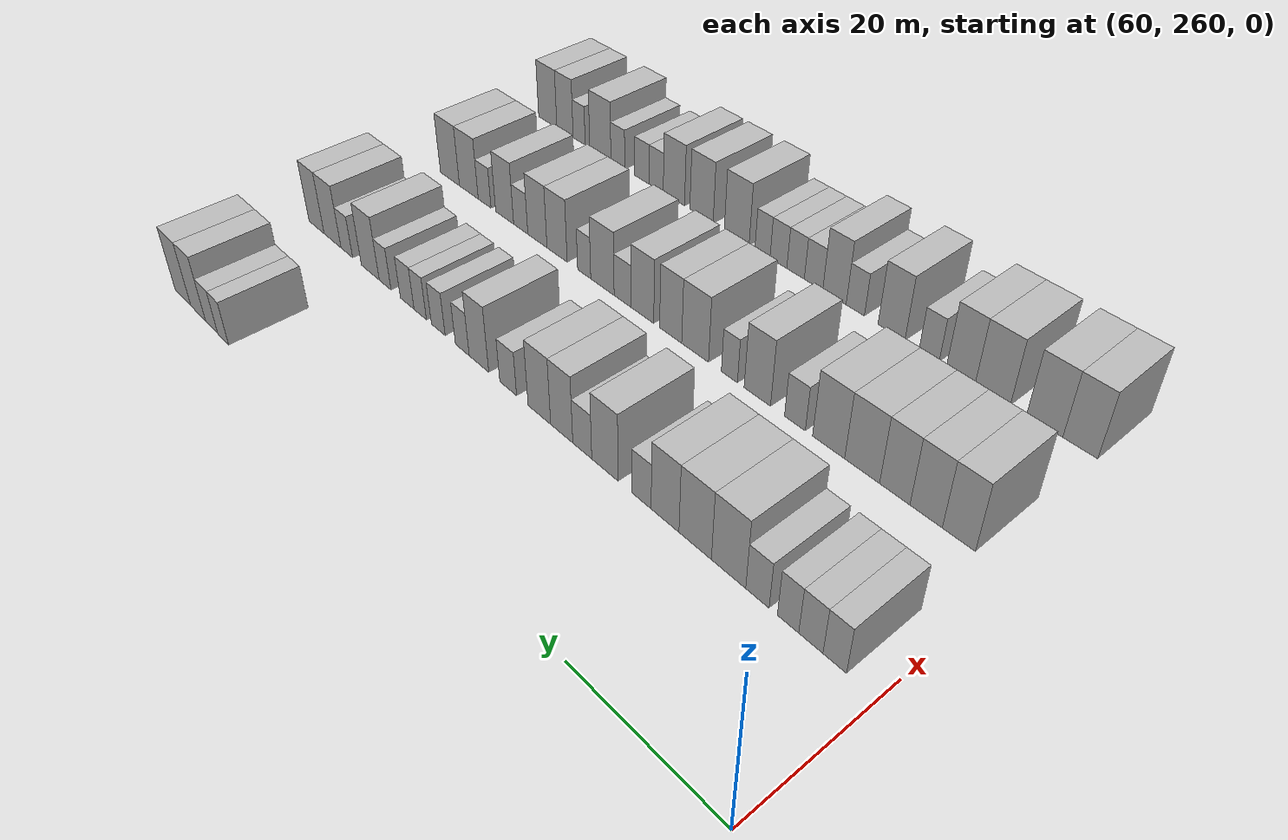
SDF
<sdf version="1.6">
 <world name="default">
  <model name="building_514">
   <static>1</static>
   <pose>63.0000 338.3845 0 0.000000 0.000000 0.000000</pose>
   <link name="link">
    <pose>0 0 3.00 0 0 0</pose>
    <collision name="collision"><geometry><box><size>10.0000 2.5988 6.0000</size></box></geometry></collision>
    <visual name="visual">
     <cast_shadows>0</cast_shadows>
     <geometry><box><size>10.0000 2.5988 6.0000</size></box></geometry>
     <material>
      <script>
       <uri>model://HANNAS_wall/materials/scripts</uri>
       <uri>model://HANNAS_wall/materials/textures</uri>
       <name>vrc/HANNAS_wall</name>
      </script>
     </material>
    </visual>
   </link>
  </model>
  <model name="building_515">
   <static>1</static>
   <pose>63.0000 341.1776 0 0.000000 0.000000 0.000000</pose>
   <link name="link">
    <pose>0 0 3.00 0 0 0</pose>
    <collision name="collision"><geometry><box><size>10.0000 2.9874 6.0000</size></box></geometry></collision>
    <visual name="visual">
     <cast_shadows>0</cast_shadows>
     <geometry><box><size>10.0000 2.9874 6.0000</size></box></geometry>
     <material>
      <script>
       <uri>model://HANNAS_wall/materials/scripts</uri>
       <uri>model://HANNAS_wall/materials/textures</uri>
       <name>vrc/HANNAS_wall</name>
      </script>
     </material>
    </visual>
   </link>
  </model>
  <model name="building_516">
   <static>1</static>
   <pose>63.0000 344.5275 0 0.000000 0.000000 0.000000</pose>
   <link name="link">
    <pose>0 0 4.50 0 0 0</pose>
    <collision name="collision"><geometry><box><size>10.0000 3.7124 9.0000</size></box></geometry></collision>
    <visual name="visual">
     <cast_shadows>0</cast_shadows>
     <geometry><box><size>10.0000 3.7124 9.0000</size></box></geometry>
     <material>
      <script>
       <uri>model://HANNAS_wall/materials/scripts</uri>
       <uri>model://HANNAS_wall/materials/textures</uri>
       <name>vrc/HANNAS_wall</name>
      </script>
     </material>
    </visual>
   </link>
  </model>
  <model name="building_517">
   <static>1</static>
   <pose>63.0000 348.4287 0 0.000000 0.000000 0.000000</pose>
   <link name="link">
    <pose>0 0 4.50 0 0 0</pose>
    <collision name="collision"><geometry><box><size>10.0000 4.0901 9.0000</size></box></geometry></collision>
    <visual name="visual">
     <cast_shadows>0</cast_shadows>
     <geometry><box><size>10.0000 4.0901 9.0000</size></box></geometry>
     <material>
      <script>
       <uri>model://HANNAS_wall/materials/scripts</uri>
       <uri>model://HANNAS_wall/materials/textures</uri>
       <name>vrc/HANNAS_wall</name>
      </script>
     </material>
    </visual>
   </link>
  </model>
  <model name="building_682">
   <static>1</static>
   <pose>82.0000 264.7174 0 0.000000 0.000000 0.000000</pose>
   <link name="link">
    <pose>0 0 3.00 0 0 0</pose>
    <collision name="collision"><geometry><box><size>10.0000 2.6478 6.0000</size></box></geometry></collision>
    <visual name="visual">
     <cast_shadows>0</cast_shadows>
     <geometry><box><size>10.0000 2.6478 6.0000</size></box></geometry>
     <material>
      <script>
       <uri>model://HANNAS_wall/materials/scripts</uri>
       <uri>model://HANNAS_wall/materials/textures</uri>
       <name>vrc/HANNAS_wall</name>
      </script>
     </material>
    </visual>
   </link>
  </model>
  <model name="building_683">
   <static>1</static>
   <pose>82.0000 267.4452 0 0.000000 0.000000 0.000000</pose>
   <link name="link">
    <pose>0 0 3.00 0 0 0</pose>
    <collision name="collision"><geometry><box><size>10.0000 2.8079 6.0000</size></box></geometry></collision>
    <visual name="visual">
     <cast_shadows>0</cast_shadows>
     <geometry><box><size>10.0000 2.8079 6.0000</size></box></geometry>
     <material>
      <script>
       <uri>model://HANNAS_wall/materials/scripts</uri>
       <uri>model://HANNAS_wall/materials/textures</uri>
       <name>vrc/HANNAS_wall</name>
      </script>
     </material>
    </visual>
   </link>
  </model>
  <model name="building_684">
   <static>1</static>
   <pose>82.0000 270.1180 0 0.000000 0.000000 0.000000</pose>
   <link name="link">
    <pose>0 0 3.00 0 0 0</pose>
    <collision name="collision"><geometry><box><size>10.0000 2.5377 6.0000</size></box></geometry></collision>
    <visual name="visual">
     <cast_shadows>0</cast_shadows>
     <geometry><box><size>10.0000 2.5377 6.0000</size></box></geometry>
     <material>
      <script>
       <uri>model://HANNAS_wall/materials/scripts</uri>
       <uri>model://HANNAS_wall/materials/textures</uri>
       <name>vrc/HANNAS_wall</name>
      </script>
     </material>
    </visual>
   </link>
  </model>
  <model name="building_685">
   <static>1</static>
   <pose>82.0000 273.8341 0 0.000000 0.000000 0.000000</pose>
   <link name="link">
    <pose>0 0 3.00 0 0 0</pose>
    <collision name="collision"><geometry><box><size>10.0000 2.8944 6.0000</size></box></geometry></collision>
    <visual name="visual">
     <cast_shadows>0</cast_shadows>
     <geometry><box><size>10.0000 2.8944 6.0000</size></box></geometry>
     <material>
      <script>
       <uri>model://HANNAS_wall/materials/scripts</uri>
       <uri>model://HANNAS_wall/materials/textures</uri>
       <name>vrc/HANNAS_wall</name>
      </script>
     </material>
    </visual>
   </link>
  </model>
  <model name="building_686">
   <static>1</static>
   <pose>82.0000 277.4903 0 0.000000 0.000000 0.000000</pose>
   <link name="link">
    <pose>0 0 4.50 0 0 0</pose>
    <collision name="collision"><geometry><box><size>10.0000 4.4180 9.0000</size></box></geometry></collision>
    <visual name="visual">
     <cast_shadows>0</cast_shadows>
     <geometry><box><size>10.0000 4.4180 9.0000</size></box></geometry>
     <material>
      <script>
       <uri>model://HANNAS_wall/materials/scripts</uri>
       <uri>model://HANNAS_wall/materials/textures</uri>
       <name>vrc/HANNAS_wall</name>
      </script>
     </material>
    </visual>
   </link>
  </model>
  <model name="building_687">
   <static>1</static>
   <pose>82.0000 281.8822 0 0.000000 0.000000 0.000000</pose>
   <link name="link">
    <pose>0 0 4.50 0 0 0</pose>
    <collision name="collision"><geometry><box><size>10.0000 4.3656 9.0000</size></box></geometry></collision>
    <visual name="visual">
     <cast_shadows>0</cast_shadows>
     <geometry><box><size>10.0000 4.3656 9.0000</size></box></geometry>
     <material>
      <script>
       <uri>model://HANNAS_wall/materials/scripts</uri>
       <uri>model://HANNAS_wall/materials/textures</uri>
       <name>vrc/HANNAS_wall</name>
      </script>
     </material>
    </visual>
   </link>
  </model>
  <model name="building_688">
   <static>1</static>
   <pose>82.0000 286.0206 0 0.000000 0.000000 0.000000</pose>
   <link name="link">
    <pose>0 0 4.50 0 0 0</pose>
    <collision name="collision"><geometry><box><size>10.0000 3.9113 9.0000</size></box></geometry></collision>
    <visual name="visual">
     <cast_shadows>0</cast_shadows>
     <geometry><box><size>10.0000 3.9113 9.0000</size></box></geometry>
     <material>
      <script>
       <uri>model://HANNAS_wall/materials/scripts</uri>
       <uri>model://HANNAS_wall/materials/textures</uri>
       <name>vrc/HANNAS_wall</name>
      </script>
     </material>
    </visual>
   </link>
  </model>
  <model name="building_689">
   <static>1</static>
   <pose>82.0000 289.3879 0 0.000000 0.000000 0.000000</pose>
   <link name="link">
    <pose>0 0 3.00 0 0 0</pose>
    <collision name="collision"><geometry><box><size>10.0000 2.8234 6.0000</size></box></geometry></collision>
    <visual name="visual">
     <cast_shadows>0</cast_shadows>
     <geometry><box><size>10.0000 2.8234 6.0000</size></box></geometry>
     <material>
      <script>
       <uri>model://HANNAS_wall/materials/scripts</uri>
       <uri>model://HANNAS_wall/materials/textures</uri>
       <name>vrc/HANNAS_wall</name>
      </script>
     </material>
    </visual>
   </link>
  </model>
  <model name="building_690">
   <static>1</static>
   <pose>82.0000 294.8202 0 0.000000 0.000000 0.000000</pose>
   <link name="link">
    <pose>0 0 4.50 0 0 0</pose>
    <collision name="collision"><geometry><box><size>10.0000 4.0410 9.0000</size></box></geometry></collision>
    <visual name="visual">
     <cast_shadows>0</cast_shadows>
     <geometry><box><size>10.0000 4.0410 9.0000</size></box></geometry>
     <material>
      <script>
       <uri>model://HANNAS_wall/materials/scripts</uri>
       <uri>model://HANNAS_wall/materials/textures</uri>
       <name>vrc/HANNAS_wall</name>
      </script>
     </material>
    </visual>
   </link>
  </model>
  <model name="building_691">
   <static>1</static>
   <pose>82.0000 298.3397 0 0.000000 0.000000 0.000000</pose>
   <link name="link">
    <pose>0 0 3.00 0 0 0</pose>
    <collision name="collision"><geometry><box><size>10.0000 2.9981 6.0000</size></box></geometry></collision>
    <visual name="visual">
     <cast_shadows>0</cast_shadows>
     <geometry><box><size>10.0000 2.9981 6.0000</size></box></geometry>
     <material>
      <script>
       <uri>model://HANNAS_wall/materials/scripts</uri>
       <uri>model://HANNAS_wall/materials/textures</uri>
       <name>vrc/HANNAS_wall</name>
      </script>
     </material>
    </visual>
   </link>
  </model>
  <model name="building_692">
   <static>1</static>
   <pose>82.0000 301.6391 0 0.000000 0.000000 0.000000</pose>
   <link name="link">
    <pose>0 0 4.50 0 0 0</pose>
    <collision name="collision"><geometry><box><size>10.0000 3.6008 9.0000</size></box></geometry></collision>
    <visual name="visual">
     <cast_shadows>0</cast_shadows>
     <geometry><box><size>10.0000 3.6008 9.0000</size></box></geometry>
     <material>
      <script>
       <uri>model://HANNAS_wall/materials/scripts</uri>
       <uri>model://HANNAS_wall/materials/textures</uri>
       <name>vrc/HANNAS_wall</name>
      </script>
     </material>
    </visual>
   </link>
  </model>
  <model name="building_693">
   <static>1</static>
   <pose>82.0000 305.3458 0 0.000000 0.000000 0.000000</pose>
   <link name="link">
    <pose>0 0 4.50 0 0 0</pose>
    <collision name="collision"><geometry><box><size>10.0000 3.8126 9.0000</size></box></geometry></collision>
    <visual name="visual">
     <cast_shadows>0</cast_shadows>
     <geometry><box><size>10.0000 3.8126 9.0000</size></box></geometry>
     <material>
      <script>
       <uri>model://HANNAS_wall/materials/scripts</uri>
       <uri>model://HANNAS_wall/materials/textures</uri>
       <name>vrc/HANNAS_wall</name>
      </script>
     </material>
    </visual>
   </link>
  </model>
  <model name="building_694">
   <static>1</static>
   <pose>82.0000 310.7434 0 0.000000 0.000000 0.000000</pose>
   <link name="link">
    <pose>0 0 3.00 0 0 0</pose>
    <collision name="collision"><geometry><box><size>10.0000 2.9826 6.0000</size></box></geometry></collision>
    <visual name="visual">
     <cast_shadows>0</cast_shadows>
     <geometry><box><size>10.0000 2.9826 6.0000</size></box></geometry>
     <material>
      <script>
       <uri>model://HANNAS_wall/materials/scripts</uri>
       <uri>model://HANNAS_wall/materials/textures</uri>
       <name>vrc/HANNAS_wall</name>
      </script>
     </material>
    </visual>
   </link>
  </model>
  <model name="building_695">
   <static>1</static>
   <pose>82.0000 316.0466 0 0.000000 0.000000 0.000000</pose>
   <link name="link">
    <pose>0 0 4.50 0 0 0</pose>
    <collision name="collision"><geometry><box><size>10.0000 3.6238 9.0000</size></box></geometry></collision>
    <visual name="visual">
     <cast_shadows>0</cast_shadows>
     <geometry><box><size>10.0000 3.6238 9.0000</size></box></geometry>
     <material>
      <script>
       <uri>model://HANNAS_wall/materials/scripts</uri>
       <uri>model://HANNAS_wall/materials/textures</uri>
       <name>vrc/HANNAS_wall</name>
      </script>
     </material>
    </visual>
   </link>
  </model>
  <model name="building_696">
   <static>1</static>
   <pose>82.0000 319.1694 0 0.000000 0.000000 0.000000</pose>
   <link name="link">
    <pose>0 0 3.00 0 0 0</pose>
    <collision name="collision"><geometry><box><size>10.0000 2.6218 6.0000</size></box></geometry></collision>
    <visual name="visual">
     <cast_shadows>0</cast_shadows>
     <geometry><box><size>10.0000 2.6218 6.0000</size></box></geometry>
     <material>
      <script>
       <uri>model://HANNAS_wall/materials/scripts</uri>
       <uri>model://HANNAS_wall/materials/textures</uri>
       <name>vrc/HANNAS_wall</name>
      </script>
     </material>
    </visual>
   </link>
  </model>
  <model name="building_697">
   <static>1</static>
   <pose>82.0000 323.8464 0 0.000000 0.000000 0.000000</pose>
   <link name="link">
    <pose>0 0 3.00 0 0 0</pose>
    <collision name="collision"><geometry><box><size>10.0000 2.7321 6.0000</size></box></geometry></collision>
    <visual name="visual">
     <cast_shadows>0</cast_shadows>
     <geometry><box><size>10.0000 2.7321 6.0000</size></box></geometry>
     <material>
      <script>
       <uri>model://HANNAS_wall/materials/scripts</uri>
       <uri>model://HANNAS_wall/materials/textures</uri>
       <name>vrc/HANNAS_wall</name>
      </script>
     </material>
    </visual>
   </link>
  </model>
  <model name="building_698">
   <static>1</static>
   <pose>82.0000 327.4817 0 0.000000 0.000000 0.000000</pose>
   <link name="link">
    <pose>0 0 3.00 0 0 0</pose>
    <collision name="collision"><geometry><box><size>10.0000 2.5385 6.0000</size></box></geometry></collision>
    <visual name="visual">
     <cast_shadows>0</cast_shadows>
     <geometry><box><size>10.0000 2.5385 6.0000</size></box></geometry>
     <material>
      <script>
       <uri>model://HANNAS_wall/materials/scripts</uri>
       <uri>model://HANNAS_wall/materials/textures</uri>
       <name>vrc/HANNAS_wall</name>
      </script>
     </material>
    </visual>
   </link>
  </model>
  <model name="building_699">
   <static>1</static>
   <pose>82.0000 330.1828 0 0.000000 0.000000 0.000000</pose>
   <link name="link">
    <pose>0 0 3.00 0 0 0</pose>
    <collision name="collision"><geometry><box><size>10.0000 2.8638 6.0000</size></box></geometry></collision>
    <visual name="visual">
     <cast_shadows>0</cast_shadows>
     <geometry><box><size>10.0000 2.8638 6.0000</size></box></geometry>
     <material>
      <script>
       <uri>model://HANNAS_wall/materials/scripts</uri>
       <uri>model://HANNAS_wall/materials/textures</uri>
       <name>vrc/HANNAS_wall</name>
      </script>
     </material>
    </visual>
   </link>
  </model>
  <model name="building_700">
   <static>1</static>
   <pose>82.0000 334.8943 0 0.000000 0.000000 0.000000</pose>
   <link name="link">
    <pose>0 0 3.00 0 0 0</pose>
    <collision name="collision"><geometry><box><size>10.0000 2.5591 6.0000</size></box></geometry></collision>
    <visual name="visual">
     <cast_shadows>0</cast_shadows>
     <geometry><box><size>10.0000 2.5591 6.0000</size></box></geometry>
     <material>
      <script>
       <uri>model://HANNAS_wall/materials/scripts</uri>
       <uri>model://HANNAS_wall/materials/textures</uri>
       <name>vrc/HANNAS_wall</name>
      </script>
     </material>
    </visual>
   </link>
  </model>
  <model name="building_701">
   <static>1</static>
   <pose>82.0000 338.1633 0 0.000000 0.000000 0.000000</pose>
   <link name="link">
    <pose>0 0 4.50 0 0 0</pose>
    <collision name="collision"><geometry><box><size>10.0000 3.9789 9.0000</size></box></geometry></collision>
    <visual name="visual">
     <cast_shadows>0</cast_shadows>
     <geometry><box><size>10.0000 3.9789 9.0000</size></box></geometry>
     <material>
      <script>
       <uri>model://HANNAS_wall/materials/scripts</uri>
       <uri>model://HANNAS_wall/materials/textures</uri>
       <name>vrc/HANNAS_wall</name>
      </script>
     </material>
    </visual>
   </link>
  </model>
  <model name="building_702">
   <static>1</static>
   <pose>82.0000 343.5040 0 0.000000 0.000000 0.000000</pose>
   <link name="link">
    <pose>0 0 3.00 0 0 0</pose>
    <collision name="collision"><geometry><box><size>10.0000 2.7025 6.0000</size></box></geometry></collision>
    <visual name="visual">
     <cast_shadows>0</cast_shadows>
     <geometry><box><size>10.0000 2.7025 6.0000</size></box></geometry>
     <material>
      <script>
       <uri>model://HANNAS_wall/materials/scripts</uri>
       <uri>model://HANNAS_wall/materials/textures</uri>
       <name>vrc/HANNAS_wall</name>
      </script>
     </material>
    </visual>
   </link>
  </model>
  <model name="building_703">
   <static>1</static>
   <pose>82.0000 346.8751 0 0.000000 0.000000 0.000000</pose>
   <link name="link">
    <pose>0 0 4.50 0 0 0</pose>
    <collision name="collision"><geometry><box><size>10.0000 4.0397 9.0000</size></box></geometry></collision>
    <visual name="visual">
     <cast_shadows>0</cast_shadows>
     <geometry><box><size>10.0000 4.0397 9.0000</size></box></geometry>
     <material>
      <script>
       <uri>model://HANNAS_wall/materials/scripts</uri>
       <uri>model://HANNAS_wall/materials/textures</uri>
       <name>vrc/HANNAS_wall</name>
      </script>
     </material>
    </visual>
   </link>
  </model>
  <model name="building_704">
   <static>1</static>
   <pose>82.0000 350.7434 0 0.000000 0.000000 0.000000</pose>
   <link name="link">
    <pose>0 0 4.50 0 0 0</pose>
    <collision name="collision"><geometry><box><size>10.0000 3.6968 9.0000</size></box></geometry></collision>
    <visual name="visual">
     <cast_shadows>0</cast_shadows>
     <geometry><box><size>10.0000 3.6968 9.0000</size></box></geometry>
     <material>
      <script>
       <uri>model://HANNAS_wall/materials/scripts</uri>
       <uri>model://HANNAS_wall/materials/textures</uri>
       <name>vrc/HANNAS_wall</name>
      </script>
     </material>
    </visual>
   </link>
  </model>
  <model name="building_860">
   <static>1</static>
   <pose>101.0000 266.0982 0 0.000000 0.000000 0.000000</pose>
   <link name="link">
    <pose>0 0 4.50 0 0 0</pose>
    <collision name="collision"><geometry><box><size>10.0000 3.8006 9.0000</size></box></geometry></collision>
    <visual name="visual">
     <cast_shadows>0</cast_shadows>
     <geometry><box><size>10.0000 3.8006 9.0000</size></box></geometry>
     <material>
      <script>
       <uri>model://HANNAS_wall/materials/scripts</uri>
       <uri>model://HANNAS_wall/materials/textures</uri>
       <name>vrc/HANNAS_wall</name>
      </script>
     </material>
    </visual>
   </link>
  </model>
  <model name="building_861">
   <static>1</static>
   <pose>101.0000 269.9236 0 0.000000 0.000000 0.000000</pose>
   <link name="link">
    <pose>0 0 4.50 0 0 0</pose>
    <collision name="collision"><geometry><box><size>10.0000 3.8502 9.0000</size></box></geometry></collision>
    <visual name="visual">
     <cast_shadows>0</cast_shadows>
     <geometry><box><size>10.0000 3.8502 9.0000</size></box></geometry>
     <material>
      <script>
       <uri>model://HANNAS_wall/materials/scripts</uri>
       <uri>model://HANNAS_wall/materials/textures</uri>
       <name>vrc/HANNAS_wall</name>
      </script>
     </material>
    </visual>
   </link>
  </model>
  <model name="building_862">
   <static>1</static>
   <pose>101.0000 273.7265 0 0.000000 0.000000 0.000000</pose>
   <link name="link">
    <pose>0 0 4.50 0 0 0</pose>
    <collision name="collision"><geometry><box><size>10.0000 3.7558 9.0000</size></box></geometry></collision>
    <visual name="visual">
     <cast_shadows>0</cast_shadows>
     <geometry><box><size>10.0000 3.7558 9.0000</size></box></geometry>
     <material>
      <script>
       <uri>model://HANNAS_wall/materials/scripts</uri>
       <uri>model://HANNAS_wall/materials/textures</uri>
       <name>vrc/HANNAS_wall</name>
      </script>
     </material>
    </visual>
   </link>
  </model>
  <model name="building_863">
   <static>1</static>
   <pose>101.0000 277.8516 0 0.000000 0.000000 0.000000</pose>
   <link name="link">
    <pose>0 0 4.50 0 0 0</pose>
    <collision name="collision"><geometry><box><size>10.0000 4.4943 9.0000</size></box></geometry></collision>
    <visual name="visual">
     <cast_shadows>0</cast_shadows>
     <geometry><box><size>10.0000 4.4943 9.0000</size></box></geometry>
     <material>
      <script>
       <uri>model://HANNAS_wall/materials/scripts</uri>
       <uri>model://HANNAS_wall/materials/textures</uri>
       <name>vrc/HANNAS_wall</name>
      </script>
     </material>
    </visual>
   </link>
  </model>
  <model name="building_864">
   <static>1</static>
   <pose>101.0000 282.2518 0 0.000000 0.000000 0.000000</pose>
   <link name="link">
    <pose>0 0 4.50 0 0 0</pose>
    <collision name="collision"><geometry><box><size>10.0000 4.3062 9.0000</size></box></geometry></collision>
    <visual name="visual">
     <cast_shadows>0</cast_shadows>
     <geometry><box><size>10.0000 4.3062 9.0000</size></box></geometry>
     <material>
      <script>
       <uri>model://HANNAS_wall/materials/scripts</uri>
       <uri>model://HANNAS_wall/materials/textures</uri>
       <name>vrc/HANNAS_wall</name>
      </script>
     </material>
    </visual>
   </link>
  </model>
  <model name="building_865">
   <static>1</static>
   <pose>101.0000 286.8589 0 0.000000 0.000000 0.000000</pose>
   <link name="link">
    <pose>0 0 3.00 0 0 0</pose>
    <collision name="collision"><geometry><box><size>10.0000 2.9079 6.0000</size></box></geometry></collision>
    <visual name="visual">
     <cast_shadows>0</cast_shadows>
     <geometry><box><size>10.0000 2.9079 6.0000</size></box></geometry>
     <material>
      <script>
       <uri>model://HANNAS_wall/materials/scripts</uri>
       <uri>model://HANNAS_wall/materials/textures</uri>
       <name>vrc/HANNAS_wall</name>
      </script>
     </material>
    </visual>
   </link>
  </model>
  <model name="building_866">
   <static>1</static>
   <pose>101.0000 292.2543 0 0.000000 0.000000 0.000000</pose>
   <link name="link">
    <pose>0 0 4.50 0 0 0</pose>
    <collision name="collision"><geometry><box><size>10.0000 3.8830 9.0000</size></box></geometry></collision>
    <visual name="visual">
     <cast_shadows>0</cast_shadows>
     <geometry><box><size>10.0000 3.8830 9.0000</size></box></geometry>
     <material>
      <script>
       <uri>model://HANNAS_wall/materials/scripts</uri>
       <uri>model://HANNAS_wall/materials/textures</uri>
       <name>vrc/HANNAS_wall</name>
      </script>
     </material>
    </visual>
   </link>
  </model>
  <model name="building_867">
   <static>1</static>
   <pose>101.0000 296.4227 0 0.000000 0.000000 0.000000</pose>
   <link name="link">
    <pose>0 0 3.00 0 0 0</pose>
    <collision name="collision"><geometry><box><size>10.0000 2.4537 6.0000</size></box></geometry></collision>
    <visual name="visual">
     <cast_shadows>0</cast_shadows>
     <geometry><box><size>10.0000 2.4537 6.0000</size></box></geometry>
     <material>
      <script>
       <uri>model://HANNAS_wall/materials/scripts</uri>
       <uri>model://HANNAS_wall/materials/textures</uri>
       <name>vrc/HANNAS_wall</name>
      </script>
     </material>
    </visual>
   </link>
  </model>
  <model name="building_868">
   <static>1</static>
   <pose>101.0000 301.7937 0 0.000000 0.000000 0.000000</pose>
   <link name="link">
    <pose>0 0 4.50 0 0 0</pose>
    <collision name="collision"><geometry><box><size>10.0000 4.2884 9.0000</size></box></geometry></collision>
    <visual name="visual">
     <cast_shadows>0</cast_shadows>
     <geometry><box><size>10.0000 4.2884 9.0000</size></box></geometry>
     <material>
      <script>
       <uri>model://HANNAS_wall/materials/scripts</uri>
       <uri>model://HANNAS_wall/materials/textures</uri>
       <name>vrc/HANNAS_wall</name>
      </script>
     </material>
    </visual>
   </link>
  </model>
  <model name="building_869">
   <static>1</static>
   <pose>101.0000 305.7612 0 0.000000 0.000000 0.000000</pose>
   <link name="link">
    <pose>0 0 4.50 0 0 0</pose>
    <collision name="collision"><geometry><box><size>10.0000 3.6465 9.0000</size></box></geometry></collision>
    <visual name="visual">
     <cast_shadows>0</cast_shadows>
     <geometry><box><size>10.0000 3.6465 9.0000</size></box></geometry>
     <material>
      <script>
       <uri>model://HANNAS_wall/materials/scripts</uri>
       <uri>model://HANNAS_wall/materials/textures</uri>
       <name>vrc/HANNAS_wall</name>
      </script>
     </material>
    </visual>
   </link>
  </model>
  <model name="building_870">
   <static>1</static>
   <pose>101.0000 310.5620 0 0.000000 0.000000 0.000000</pose>
   <link name="link">
    <pose>0 0 4.50 0 0 0</pose>
    <collision name="collision"><geometry><box><size>10.0000 3.9551 9.0000</size></box></geometry></collision>
    <visual name="visual">
     <cast_shadows>0</cast_shadows>
     <geometry><box><size>10.0000 3.9551 9.0000</size></box></geometry>
     <material>
      <script>
       <uri>model://HANNAS_wall/materials/scripts</uri>
       <uri>model://HANNAS_wall/materials/textures</uri>
       <name>vrc/HANNAS_wall</name>
      </script>
     </material>
    </visual>
   </link>
  </model>
  <model name="building_871">
   <static>1</static>
   <pose>101.0000 314.0082 0 0.000000 0.000000 0.000000</pose>
   <link name="link">
    <pose>0 0 3.00 0 0 0</pose>
    <collision name="collision"><geometry><box><size>10.0000 2.9374 6.0000</size></box></geometry></collision>
    <visual name="visual">
     <cast_shadows>0</cast_shadows>
     <geometry><box><size>10.0000 2.9374 6.0000</size></box></geometry>
     <material>
      <script>
       <uri>model://HANNAS_wall/materials/scripts</uri>
       <uri>model://HANNAS_wall/materials/textures</uri>
       <name>vrc/HANNAS_wall</name>
      </script>
     </material>
    </visual>
   </link>
  </model>
  <model name="building_872">
   <static>1</static>
   <pose>101.0000 317.6067 0 0.000000 0.000000 0.000000</pose>
   <link name="link">
    <pose>0 0 4.50 0 0 0</pose>
    <collision name="collision"><geometry><box><size>10.0000 4.2595 9.0000</size></box></geometry></collision>
    <visual name="visual">
     <cast_shadows>0</cast_shadows>
     <geometry><box><size>10.0000 4.2595 9.0000</size></box></geometry>
     <material>
      <script>
       <uri>model://HANNAS_wall/materials/scripts</uri>
       <uri>model://HANNAS_wall/materials/textures</uri>
       <name>vrc/HANNAS_wall</name>
      </script>
     </material>
    </visual>
   </link>
  </model>
  <model name="building_873">
   <static>1</static>
   <pose>101.0000 320.9633 0 0.000000 0.000000 0.000000</pose>
   <link name="link">
    <pose>0 0 3.00 0 0 0</pose>
    <collision name="collision"><geometry><box><size>10.0000 2.4537 6.0000</size></box></geometry></collision>
    <visual name="visual">
     <cast_shadows>0</cast_shadows>
     <geometry><box><size>10.0000 2.4537 6.0000</size></box></geometry>
     <material>
      <script>
       <uri>model://HANNAS_wall/materials/scripts</uri>
       <uri>model://HANNAS_wall/materials/textures</uri>
       <name>vrc/HANNAS_wall</name>
      </script>
     </material>
    </visual>
   </link>
  </model>
  <model name="building_874">
   <static>1</static>
   <pose>101.0000 326.1560 0 0.000000 0.000000 0.000000</pose>
   <link name="link">
    <pose>0 0 4.50 0 0 0</pose>
    <collision name="collision"><geometry><box><size>10.0000 3.9319 9.0000</size></box></geometry></collision>
    <visual name="visual">
     <cast_shadows>0</cast_shadows>
     <geometry><box><size>10.0000 3.9319 9.0000</size></box></geometry>
     <material>
      <script>
       <uri>model://HANNAS_wall/materials/scripts</uri>
       <uri>model://HANNAS_wall/materials/textures</uri>
       <name>vrc/HANNAS_wall</name>
      </script>
     </material>
    </visual>
   </link>
  </model>
  <model name="building_875">
   <static>1</static>
   <pose>101.0000 330.0517 0 0.000000 0.000000 0.000000</pose>
   <link name="link">
    <pose>0 0 4.50 0 0 0</pose>
    <collision name="collision"><geometry><box><size>10.0000 3.8594 9.0000</size></box></geometry></collision>
    <visual name="visual">
     <cast_shadows>0</cast_shadows>
     <geometry><box><size>10.0000 3.8594 9.0000</size></box></geometry>
     <material>
      <script>
       <uri>model://HANNAS_wall/materials/scripts</uri>
       <uri>model://HANNAS_wall/materials/textures</uri>
       <name>vrc/HANNAS_wall</name>
      </script>
     </material>
    </visual>
   </link>
  </model>
  <model name="building_876">
   <static>1</static>
   <pose>101.0000 333.4437 0 0.000000 0.000000 0.000000</pose>
   <link name="link">
    <pose>0 0 3.00 0 0 0</pose>
    <collision name="collision"><geometry><box><size>10.0000 2.9247 6.0000</size></box></geometry></collision>
    <visual name="visual">
     <cast_shadows>0</cast_shadows>
     <geometry><box><size>10.0000 2.9247 6.0000</size></box></geometry>
     <material>
      <script>
       <uri>model://HANNAS_wall/materials/scripts</uri>
       <uri>model://HANNAS_wall/materials/textures</uri>
       <name>vrc/HANNAS_wall</name>
      </script>
     </material>
    </visual>
   </link>
  </model>
  <model name="building_877">
   <static>1</static>
   <pose>101.0000 336.8094 0 0.000000 0.000000 0.000000</pose>
   <link name="link">
    <pose>0 0 4.50 0 0 0</pose>
    <collision name="collision"><geometry><box><size>10.0000 3.8067 9.0000</size></box></geometry></collision>
    <visual name="visual">
     <cast_shadows>0</cast_shadows>
     <geometry><box><size>10.0000 3.8067 9.0000</size></box></geometry>
     <material>
      <script>
       <uri>model://HANNAS_wall/materials/scripts</uri>
       <uri>model://HANNAS_wall/materials/textures</uri>
       <name>vrc/HANNAS_wall</name>
      </script>
     </material>
    </visual>
   </link>
  </model>
  <model name="building_878">
   <static>1</static>
   <pose>101.0000 341.1080 0 0.000000 0.000000 0.000000</pose>
   <link name="link">
    <pose>0 0 3.00 0 0 0</pose>
    <collision name="collision"><geometry><box><size>10.0000 2.7903 6.0000</size></box></geometry></collision>
    <visual name="visual">
     <cast_shadows>0</cast_shadows>
     <geometry><box><size>10.0000 2.7903 6.0000</size></box></geometry>
     <material>
      <script>
       <uri>model://HANNAS_wall/materials/scripts</uri>
       <uri>model://HANNAS_wall/materials/textures</uri>
       <name>vrc/HANNAS_wall</name>
      </script>
     </material>
    </visual>
   </link>
  </model>
  <model name="building_879">
   <static>1</static>
   <pose>101.0000 344.6045 0 0.000000 0.000000 0.000000</pose>
   <link name="link">
    <pose>0 0 4.50 0 0 0</pose>
    <collision name="collision"><geometry><box><size>10.0000 4.2027 9.0000</size></box></geometry></collision>
    <visual name="visual">
     <cast_shadows>0</cast_shadows>
     <geometry><box><size>10.0000 4.2027 9.0000</size></box></geometry>
     <material>
      <script>
       <uri>model://HANNAS_wall/materials/scripts</uri>
       <uri>model://HANNAS_wall/materials/textures</uri>
       <name>vrc/HANNAS_wall</name>
      </script>
     </material>
    </visual>
   </link>
  </model>
  <model name="building_880">
   <static>1</static>
   <pose>101.0000 348.8937 0 0.000000 0.000000 0.000000</pose>
   <link name="link">
    <pose>0 0 4.50 0 0 0</pose>
    <collision name="collision"><geometry><box><size>10.0000 4.3759 9.0000</size></box></geometry></collision>
    <visual name="visual">
     <cast_shadows>0</cast_shadows>
     <geometry><box><size>10.0000 4.3759 9.0000</size></box></geometry>
     <material>
      <script>
       <uri>model://HANNAS_wall/materials/scripts</uri>
       <uri>model://HANNAS_wall/materials/textures</uri>
       <name>vrc/HANNAS_wall</name>
      </script>
     </material>
    </visual>
   </link>
  </model>
  <model name="building_1031">
   <static>1</static>
   <pose>120.0000 265.3331 0 0.000000 0.000000 0.000000</pose>
   <link name="link">
    <pose>0 0 4.50 0 0 0</pose>
    <collision name="collision"><geometry><box><size>10.0000 4.0601 9.0000</size></box></geometry></collision>
    <visual name="visual">
     <cast_shadows>0</cast_shadows>
     <geometry><box><size>10.0000 4.0601 9.0000</size></box></geometry>
     <material>
      <script>
       <uri>model://HANNAS_wall/materials/scripts</uri>
       <uri>model://HANNAS_wall/materials/textures</uri>
       <name>vrc/HANNAS_wall</name>
      </script>
     </material>
    </visual>
   </link>
  </model>
  <model name="building_1032">
   <static>1</static>
   <pose>120.0000 269.5423 0 0.000000 0.000000 0.000000</pose>
   <link name="link">
    <pose>0 0 4.50 0 0 0</pose>
    <collision name="collision"><geometry><box><size>10.0000 4.3583 9.0000</size></box></geometry></collision>
    <visual name="visual">
     <cast_shadows>0</cast_shadows>
     <geometry><box><size>10.0000 4.3583 9.0000</size></box></geometry>
     <material>
      <script>
       <uri>model://HANNAS_wall/materials/scripts</uri>
       <uri>model://HANNAS_wall/materials/textures</uri>
       <name>vrc/HANNAS_wall</name>
      </script>
     </material>
    </visual>
   </link>
  </model>
  <model name="building_1033">
   <static>1</static>
   <pose>120.0000 275.9640 0 0.000000 0.000000 0.000000</pose>
   <link name="link">
    <pose>0 0 4.50 0 0 0</pose>
    <collision name="collision"><geometry><box><size>10.0000 4.4850 9.0000</size></box></geometry></collision>
    <visual name="visual">
     <cast_shadows>0</cast_shadows>
     <geometry><box><size>10.0000 4.4850 9.0000</size></box></geometry>
     <material>
      <script>
       <uri>model://HANNAS_wall/materials/scripts</uri>
       <uri>model://HANNAS_wall/materials/textures</uri>
       <name>vrc/HANNAS_wall</name>
      </script>
     </material>
    </visual>
   </link>
  </model>
  <model name="building_1034">
   <static>1</static>
   <pose>120.0000 280.1041 0 0.000000 0.000000 0.000000</pose>
   <link name="link">
    <pose>0 0 4.50 0 0 0</pose>
    <collision name="collision"><geometry><box><size>10.0000 3.7953 9.0000</size></box></geometry></collision>
    <visual name="visual">
     <cast_shadows>0</cast_shadows>
     <geometry><box><size>10.0000 3.7953 9.0000</size></box></geometry>
     <material>
      <script>
       <uri>model://HANNAS_wall/materials/scripts</uri>
       <uri>model://HANNAS_wall/materials/textures</uri>
       <name>vrc/HANNAS_wall</name>
      </script>
     </material>
    </visual>
   </link>
  </model>
  <model name="building_1035">
   <static>1</static>
   <pose>120.0000 284.3777 0 0.000000 0.000000 0.000000</pose>
   <link name="link">
    <pose>0 0 3.00 0 0 0</pose>
    <collision name="collision"><geometry><box><size>10.0000 2.7520 6.0000</size></box></geometry></collision>
    <visual name="visual">
     <cast_shadows>0</cast_shadows>
     <geometry><box><size>10.0000 2.7520 6.0000</size></box></geometry>
     <material>
      <script>
       <uri>model://HANNAS_wall/materials/scripts</uri>
       <uri>model://HANNAS_wall/materials/textures</uri>
       <name>vrc/HANNAS_wall</name>
      </script>
     </material>
    </visual>
   </link>
  </model>
  <model name="building_1036">
   <static>1</static>
   <pose>120.0000 289.6838 0 0.000000 0.000000 0.000000</pose>
   <link name="link">
    <pose>0 0 4.50 0 0 0</pose>
    <collision name="collision"><geometry><box><size>10.0000 3.8603 9.0000</size></box></geometry></collision>
    <visual name="visual">
     <cast_shadows>0</cast_shadows>
     <geometry><box><size>10.0000 3.8603 9.0000</size></box></geometry>
     <material>
      <script>
       <uri>model://HANNAS_wall/materials/scripts</uri>
       <uri>model://HANNAS_wall/materials/textures</uri>
       <name>vrc/HANNAS_wall</name>
      </script>
     </material>
    </visual>
   </link>
  </model>
  <model name="building_1037">
   <static>1</static>
   <pose>120.0000 294.9902 0 0.000000 0.000000 0.000000</pose>
   <link name="link">
    <pose>0 0 3.00 0 0 0</pose>
    <collision name="collision"><geometry><box><size>10.0000 2.7525 6.0000</size></box></geometry></collision>
    <visual name="visual">
     <cast_shadows>0</cast_shadows>
     <geometry><box><size>10.0000 2.7525 6.0000</size></box></geometry>
     <material>
      <script>
       <uri>model://HANNAS_wall/materials/scripts</uri>
       <uri>model://HANNAS_wall/materials/textures</uri>
       <name>vrc/HANNAS_wall</name>
      </script>
     </material>
    </visual>
   </link>
  </model>
  <model name="building_1038">
   <static>1</static>
   <pose>120.0000 298.1673 0 0.000000 0.000000 0.000000</pose>
   <link name="link">
    <pose>0 0 4.50 0 0 0</pose>
    <collision name="collision"><geometry><box><size>10.0000 3.6018 9.0000</size></box></geometry></collision>
    <visual name="visual">
     <cast_shadows>0</cast_shadows>
     <geometry><box><size>10.0000 3.6018 9.0000</size></box></geometry>
     <material>
      <script>
       <uri>model://HANNAS_wall/materials/scripts</uri>
       <uri>model://HANNAS_wall/materials/textures</uri>
       <name>vrc/HANNAS_wall</name>
      </script>
     </material>
    </visual>
   </link>
  </model>
  <model name="building_1039">
   <static>1</static>
   <pose>120.0000 301.4276 0 0.000000 0.000000 0.000000</pose>
   <link name="link">
    <pose>0 0 3.00 0 0 0</pose>
    <collision name="collision"><geometry><box><size>10.0000 2.9186 6.0000</size></box></geometry></collision>
    <visual name="visual">
     <cast_shadows>0</cast_shadows>
     <geometry><box><size>10.0000 2.9186 6.0000</size></box></geometry>
     <material>
      <script>
       <uri>model://HANNAS_wall/materials/scripts</uri>
       <uri>model://HANNAS_wall/materials/textures</uri>
       <name>vrc/HANNAS_wall</name>
      </script>
     </material>
    </visual>
   </link>
  </model>
  <model name="building_1040">
   <static>1</static>
   <pose>120.0000 304.3005 0 0.000000 0.000000 0.000000</pose>
   <link name="link">
    <pose>0 0 3.00 0 0 0</pose>
    <collision name="collision"><geometry><box><size>10.0000 2.8273 6.0000</size></box></geometry></collision>
    <visual name="visual">
     <cast_shadows>0</cast_shadows>
     <geometry><box><size>10.0000 2.8273 6.0000</size></box></geometry>
     <material>
      <script>
       <uri>model://HANNAS_wall/materials/scripts</uri>
       <uri>model://HANNAS_wall/materials/textures</uri>
       <name>vrc/HANNAS_wall</name>
      </script>
     </material>
    </visual>
   </link>
  </model>
  <model name="building_1041">
   <static>1</static>
   <pose>120.0000 307.1092 0 0.000000 0.000000 0.000000</pose>
   <link name="link">
    <pose>0 0 3.00 0 0 0</pose>
    <collision name="collision"><geometry><box><size>10.0000 2.7901 6.0000</size></box></geometry></collision>
    <visual name="visual">
     <cast_shadows>0</cast_shadows>
     <geometry><box><size>10.0000 2.7901 6.0000</size></box></geometry>
     <material>
      <script>
       <uri>model://HANNAS_wall/materials/scripts</uri>
       <uri>model://HANNAS_wall/materials/textures</uri>
       <name>vrc/HANNAS_wall</name>
      </script>
     </material>
    </visual>
   </link>
  </model>
  <model name="building_1042">
   <static>1</static>
   <pose>120.0000 309.7789 0 0.000000 0.000000 0.000000</pose>
   <link name="link">
    <pose>0 0 3.00 0 0 0</pose>
    <collision name="collision"><geometry><box><size>10.0000 2.5493 6.0000</size></box></geometry></collision>
    <visual name="visual">
     <cast_shadows>0</cast_shadows>
     <geometry><box><size>10.0000 2.5493 6.0000</size></box></geometry>
     <material>
      <script>
       <uri>model://HANNAS_wall/materials/scripts</uri>
       <uri>model://HANNAS_wall/materials/textures</uri>
       <name>vrc/HANNAS_wall</name>
      </script>
     </material>
    </visual>
   </link>
  </model>
  <model name="building_1043">
   <static>1</static>
   <pose>120.0000 314.2231 0 0.000000 0.000000 0.000000</pose>
   <link name="link">
    <pose>0 0 4.50 0 0 0</pose>
    <collision name="collision"><geometry><box><size>10.0000 4.3392 9.0000</size></box></geometry></collision>
    <visual name="visual">
     <cast_shadows>0</cast_shadows>
     <geometry><box><size>10.0000 4.3392 9.0000</size></box></geometry>
     <material>
      <script>
       <uri>model://HANNAS_wall/materials/scripts</uri>
       <uri>model://HANNAS_wall/materials/textures</uri>
       <name>vrc/HANNAS_wall</name>
      </script>
     </material>
    </visual>
   </link>
  </model>
  <model name="building_1044">
   <static>1</static>
   <pose>120.0000 320.5277 0 0.000000 0.000000 0.000000</pose>
   <link name="link">
    <pose>0 0 4.50 0 0 0</pose>
    <collision name="collision"><geometry><box><size>10.0000 4.2699 9.0000</size></box></geometry></collision>
    <visual name="visual">
     <cast_shadows>0</cast_shadows>
     <geometry><box><size>10.0000 4.2699 9.0000</size></box></geometry>
     <material>
      <script>
       <uri>model://HANNAS_wall/materials/scripts</uri>
       <uri>model://HANNAS_wall/materials/textures</uri>
       <name>vrc/HANNAS_wall</name>
      </script>
     </material>
    </visual>
   </link>
  </model>
  <model name="building_1045">
   <static>1</static>
   <pose>120.0000 325.6893 0 0.000000 0.000000 0.000000</pose>
   <link name="link">
    <pose>0 0 4.50 0 0 0</pose>
    <collision name="collision"><geometry><box><size>10.0000 4.0534 9.0000</size></box></geometry></collision>
    <visual name="visual">
     <cast_shadows>0</cast_shadows>
     <geometry><box><size>10.0000 4.0534 9.0000</size></box></geometry>
     <material>
      <script>
       <uri>model://HANNAS_wall/materials/scripts</uri>
       <uri>model://HANNAS_wall/materials/textures</uri>
       <name>vrc/HANNAS_wall</name>
      </script>
     </material>
    </visual>
   </link>
  </model>
  <model name="building_1046">
   <static>1</static>
   <pose>120.0000 329.1153 0 0.000000 0.000000 0.000000</pose>
   <link name="link">
    <pose>0 0 3.00 0 0 0</pose>
    <collision name="collision"><geometry><box><size>10.0000 2.7987 6.0000</size></box></geometry></collision>
    <visual name="visual">
     <cast_shadows>0</cast_shadows>
     <geometry><box><size>10.0000 2.7987 6.0000</size></box></geometry>
     <material>
      <script>
       <uri>model://HANNAS_wall/materials/scripts</uri>
       <uri>model://HANNAS_wall/materials/textures</uri>
       <name>vrc/HANNAS_wall</name>
      </script>
     </material>
    </visual>
   </link>
  </model>
  <model name="building_1047">
   <static>1</static>
   <pose>120.0000 331.9499 0 0.000000 0.000000 0.000000</pose>
   <link name="link">
    <pose>0 0 3.00 0 0 0</pose>
    <collision name="collision"><geometry><box><size>10.0000 2.8705 6.0000</size></box></geometry></collision>
    <visual name="visual">
     <cast_shadows>0</cast_shadows>
     <geometry><box><size>10.0000 2.8705 6.0000</size></box></geometry>
     <material>
      <script>
       <uri>model://HANNAS_wall/materials/scripts</uri>
       <uri>model://HANNAS_wall/materials/textures</uri>
       <name>vrc/HANNAS_wall</name>
      </script>
     </material>
    </visual>
   </link>
  </model>
  <model name="building_1048">
   <static>1</static>
   <pose>120.0000 336.8052 0 0.000000 0.000000 0.000000</pose>
   <link name="link">
    <pose>0 0 3.00 0 0 0</pose>
    <collision name="collision"><geometry><box><size>10.0000 2.8401 6.0000</size></box></geometry></collision>
    <visual name="visual">
     <cast_shadows>0</cast_shadows>
     <geometry><box><size>10.0000 2.8401 6.0000</size></box></geometry>
     <material>
      <script>
       <uri>model://HANNAS_wall/materials/scripts</uri>
       <uri>model://HANNAS_wall/materials/textures</uri>
       <name>vrc/HANNAS_wall</name>
      </script>
     </material>
    </visual>
   </link>
  </model>
  <model name="building_1049">
   <static>1</static>
   <pose>120.0000 340.4618 0 0.000000 0.000000 0.000000</pose>
   <link name="link">
    <pose>0 0 4.50 0 0 0</pose>
    <collision name="collision"><geometry><box><size>10.0000 4.4730 9.0000</size></box></geometry></collision>
    <visual name="visual">
     <cast_shadows>0</cast_shadows>
     <geometry><box><size>10.0000 4.4730 9.0000</size></box></geometry>
     <material>
      <script>
       <uri>model://HANNAS_wall/materials/scripts</uri>
       <uri>model://HANNAS_wall/materials/textures</uri>
       <name>vrc/HANNAS_wall</name>
      </script>
     </material>
    </visual>
   </link>
  </model>
  <model name="building_1050">
   <static>1</static>
   <pose>120.0000 345.0074 0 0.000000 0.000000 0.000000</pose>
   <link name="link">
    <pose>0 0 3.00 0 0 0</pose>
    <collision name="collision"><geometry><box><size>10.0000 2.6183 6.0000</size></box></geometry></collision>
    <visual name="visual">
     <cast_shadows>0</cast_shadows>
     <geometry><box><size>10.0000 2.6183 6.0000</size></box></geometry>
     <material>
      <script>
       <uri>model://HANNAS_wall/materials/scripts</uri>
       <uri>model://HANNAS_wall/materials/textures</uri>
       <name>vrc/HANNAS_wall</name>
      </script>
     </material>
    </visual>
   </link>
  </model>
  <model name="building_1051">
   <static>1</static>
   <pose>120.0000 348.1296 0 0.000000 0.000000 0.000000</pose>
   <link name="link">
    <pose>0 0 4.50 0 0 0</pose>
    <collision name="collision"><geometry><box><size>10.0000 3.6260 9.0000</size></box></geometry></collision>
    <visual name="visual">
     <cast_shadows>0</cast_shadows>
     <geometry><box><size>10.0000 3.6260 9.0000</size></box></geometry>
     <material>
      <script>
       <uri>model://HANNAS_wall/materials/scripts</uri>
       <uri>model://HANNAS_wall/materials/textures</uri>
       <name>vrc/HANNAS_wall</name>
      </script>
     </material>
    </visual>
   </link>
  </model>
  <model name="building_1052">
   <static>1</static>
   <pose>120.0000 352.0171 0 0.000000 0.000000 0.000000</pose>
   <link name="link">
    <pose>0 0 4.50 0 0 0</pose>
    <collision name="collision"><geometry><box><size>10.0000 4.1490 9.0000</size></box></geometry></collision>
    <visual name="visual">
     <cast_shadows>0</cast_shadows>
     <geometry><box><size>10.0000 4.1490 9.0000</size></box></geometry>
     <material>
      <script>
       <uri>model://HANNAS_wall/materials/scripts</uri>
       <uri>model://HANNAS_wall/materials/textures</uri>
       <name>vrc/HANNAS_wall</name>
      </script>
     </material>
    </visual>
   </link>
  </model>
 </world>
</sdf>
